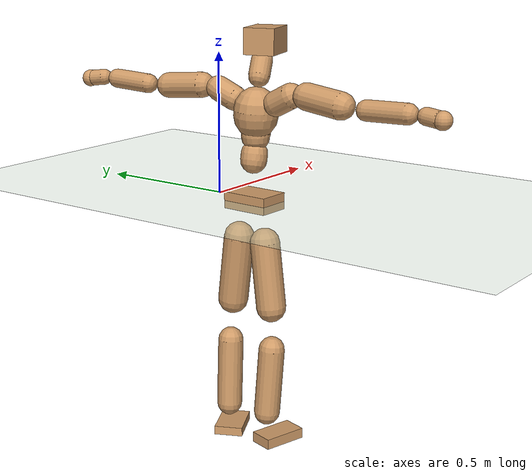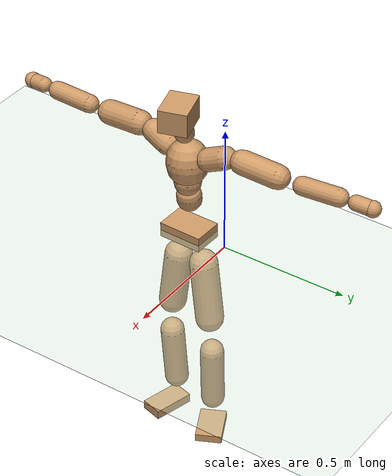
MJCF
<mujoco model="humanoid">
  <compiler coordinate="local" angle="radian"/>
  <default>
    <joint damping="0.0" armature="0.01" stiffness="0.0" limited="true"/>
    <geom conaffinity="1" condim="3" contype="7" margin="0.001" rgba="0.8 0.6 .4 1"/>
  </default>
  <asset>
    <texture type="skybox" builtin="gradient" rgb1=".4 .5 .6" rgb2="0 0 0" width="100" height="100"/>
    <texture builtin="flat" height="1278" mark="cross" markrgb="1 1 1" name="texgeom" random="0.01" rgb1="0.8 0.6 0.4" rgb2="0.8 0.6 0.4" type="cube" width="127"/>
    <texture builtin="checker" height="100" name="texplane" rgb1="0 0 0" rgb2="0.8 0.8 0.8" type="2d" width="100"/>
    <material name="MatPlane" reflectance="0.5" shininess="1" specular="1" texrepeat="60 60" texture="texplane"/>
    <material name="geom" texture="texgeom" texuniform="true"/>
  </asset>
  <worldbody>
    <light cutoff="100" diffuse="1 1 1" dir="-0 0 -1.3" directional="true" exponent="1" pos="0 0 1.3" specular=".1 .1 .1"/>
    <geom conaffinity="1" condim="3" name="floor" pos="0 0 0" rgba="0.8 0.9 0.8 1" size="100 100 .2" type="plane" material="MatPlane"/>
    <body name="Pelvis" pos="-0.003 -0.1662 0.0079">
      <freejoint name="Pelvis"/>
      <geom type="box" contype="1" conaffinity="1" density="500" pos="-0.0126 0.0004 -0.0079" size="0.0593 0.0864 0.0293" quat="0.9999 0.0000 0.0000 -0.0141" name="Pelvis"/>
      <body name="L_Hip" pos="-0.0286 0.0453 -0.0663">
        <joint name="L_Hip_x" type="hinge" pos="0 0 0" axis="1 0 0" stiffness="800" damping="80" armature="0.02" range="-180.0000 180.0000"/>
        <joint name="L_Hip_y" type="hinge" pos="0 0 0" axis="0 1 0" stiffness="800" damping="80" armature="0.02" range="-180.0000 180.0000"/>
        <joint name="L_Hip_z" type="hinge" pos="0 0 0" axis="0 0 1" stiffness="800" damping="80" armature="0.02" range="-180.0000 180.0000"/>
        <geom type="capsule" contype="1" conaffinity="1" density="500" fromto="0.0024 0.0111 -0.0797 0.0096 0.0443 -0.3187" size="0.0543" name="L_Hip"/>
        <body name="L_Knee" pos="0.012 0.0554 -0.3984">
          <joint name="L_Knee_x" type="hinge" pos="0 0 0" axis="1 0 0" stiffness="800" damping="80" armature="0.02" range="-180.0000 180.0000"/>
          <joint name="L_Knee_y" type="hinge" pos="0 0 0" axis="0 1 0" stiffness="800" damping="80" armature="0.02" range="-180.0000 180.0000"/>
          <joint name="L_Knee_z" type="hinge" pos="0 0 0" axis="0 0 1" stiffness="800" damping="80" armature="0.02" range="-180.0000 180.0000"/>
          <geom type="capsule" contype="1" conaffinity="1" density="500" fromto="-0.0052 -0.0016 -0.0809 -0.0210 -0.0066 -0.3236" size="0.0456" name="L_Knee"/>
          <body name="L_Ankle" pos="-0.0262 -0.0082 -0.4046">
            <joint name="L_Ankle_x" type="hinge" pos="0 0 0" axis="1 0 0" stiffness="800" damping="80" armature="0.02" range="-180.0000 180.0000"/>
            <joint name="L_Ankle_y" type="hinge" pos="0 0 0" axis="0 1 0" stiffness="800" damping="80" armature="0.02" range="-180.0000 180.0000"/>
            <joint name="L_Ankle_z" type="hinge" pos="0 0 0" axis="0 0 1" stiffness="800" damping="80" armature="0.02" range="-180.0000 180.0000"/>
            <geom type="box" contype="1" conaffinity="1" density="500" pos="0.0524 0.0255 -0.0281" size="0.0763 0.0515 0.0159" quat="0.9744 0.0000 0.0000 0.2247" name="L_Ankle"/>
            <body name="L_Toe" pos="0.1049 0.0511 -0.0563">
              <joint name="L_Toe_x" type="hinge" pos="0 0 0" axis="1 0 0" stiffness="500" damping="50" armature="0.02" range="-180.0000 180.0000"/>
              <joint name="L_Toe_y" type="hinge" pos="0 0 0" axis="0 1 0" stiffness="500" damping="50" armature="0.02" range="-180.0000 180.0000"/>
              <joint name="L_Toe_z" type="hinge" pos="0 0 0" axis="0 0 1" stiffness="500" damping="50" armature="0.02" range="-180.0000 180.0000"/>
              <geom type="box" contype="1" conaffinity="1" density="500" pos="0.0000 0.0000 0.0308" size="0.0009 0.0025 0.0009" quat="0.9736 0.0000 0.0000 0.2285" name="L_Toe"/>
            </body>
          </body>
        </body>
      </body>
      <body name="R_Hip" pos="-0.0275 -0.0471 -0.0722">
        <joint name="R_Hip_x" type="hinge" pos="0 0 0" axis="1 0 0" stiffness="800" damping="80" armature="0.02" range="-180.0000 180.0000"/>
        <joint name="R_Hip_y" type="hinge" pos="0 0 0" axis="0 1 0" stiffness="800" damping="80" armature="0.02" range="-180.0000 180.0000"/>
        <joint name="R_Hip_z" type="hinge" pos="0 0 0" axis="0 0 1" stiffness="800" damping="80" armature="0.02" range="-180.0000 180.0000"/>
        <geom type="capsule" contype="1" conaffinity="1" density="500" fromto="-0.0004 -0.0099 -0.0770 -0.0016 -0.0395 -0.3080" size="0.0527" name="R_Hip"/>
        <body name="R_Knee" pos="-0.002 -0.0494 -0.385">
          <joint name="R_Knee_x" type="hinge" pos="0 0 0" axis="1 0 0" stiffness="800" damping="80" armature="0.02" range="-180.0000 180.0000"/>
          <joint name="R_Knee_y" type="hinge" pos="0 0 0" axis="0 1 0" stiffness="800" damping="80" armature="0.02" range="-180.0000 180.0000"/>
          <joint name="R_Knee_z" type="hinge" pos="0 0 0" axis="0 0 1" stiffness="800" damping="80" armature="0.02" range="-180.0000 180.0000"/>
          <geom type="capsule" contype="1" conaffinity="1" density="500" fromto="-0.0049 0.0029 -0.0791 -0.0197 0.0116 -0.3163" size="0.0464" name="R_Knee"/>
          <body name="R_Ankle" pos="-0.0247 0.0146 -0.3953">
            <joint name="R_Ankle_x" type="hinge" pos="0 0 0" axis="1 0 0" stiffness="800" damping="80" armature="0.02" range="-180.0000 180.0000"/>
            <joint name="R_Ankle_y" type="hinge" pos="0 0 0" axis="0 1 0" stiffness="800" damping="80" armature="0.02" range="-180.0000 180.0000"/>
            <joint name="R_Ankle_z" type="hinge" pos="0 0 0" axis="0 0 1" stiffness="800" damping="80" armature="0.02" range="-180.0000 180.0000"/>
            <geom type="box" contype="1" conaffinity="1" density="500" pos="0.0564 -0.0152 -0.0296" size="0.0806 0.0436 0.0186" quat="0.9913 0.0000 0.0000 -0.1315" name="R_Ankle"/>
            <body name="R_Toe" pos="0.1127 -0.0304 -0.0592">
              <joint name="R_Toe_x" type="hinge" pos="0 0 0" axis="1 0 0" stiffness="500" damping="50" armature="0.02" range="-180.0000 180.0000"/>
              <joint name="R_Toe_y" type="hinge" pos="0 0 0" axis="0 1 0" stiffness="500" damping="50" armature="0.02" range="-180.0000 180.0000"/>
              <joint name="R_Toe_z" type="hinge" pos="0 0 0" axis="0 0 1" stiffness="500" damping="50" armature="0.02" range="-180.0000 180.0000"/>
              <geom type="box" contype="1" conaffinity="1" density="500" pos="0.0000 0.0000 0.0326" size="0.0008 0.0021 0.0011" quat="0.9926 0.0000 0.0000 -0.1212" name="R_Toe"/>
            </body>
          </body>
        </body>
      </body>
      <body name="Torso" pos="-0.0197 0.0039 0.0908">
        <joint name="Torso_x" type="hinge" pos="0 0 0" axis="1 0 0" stiffness="1000" damping="100" armature="0.02" range="-180.0000 180.0000"/>
        <joint name="Torso_y" type="hinge" pos="0 0 0" axis="0 1 0" stiffness="1000" damping="100" armature="0.02" range="-180.0000 180.0000"/>
        <joint name="Torso_z" type="hinge" pos="0 0 0" axis="0 0 1" stiffness="1000" damping="100" armature="0.02" range="-180.0000 180.0000"/>
        <geom type="capsule" contype="1" conaffinity="1" density="500" fromto="0.0132 0.0009 0.0652 0.0088 0.0006 0.0435" size="0.0469" name="Torso"/>
        <body name="Spine" pos="0.0219 0.0014 0.1087">
          <joint name="Spine_x" type="hinge" pos="0 0 0" axis="1 0 0" stiffness="1000" damping="100" armature="0.02" range="-180.0000 180.0000"/>
          <joint name="Spine_y" type="hinge" pos="0 0 0" axis="0 1 0" stiffness="1000" damping="100" armature="0.02" range="-180.0000 180.0000"/>
          <joint name="Spine_z" type="hinge" pos="0 0 0" axis="0 0 1" stiffness="1000" damping="100" armature="0.02" range="-180.0000 180.0000"/>
          <geom type="capsule" contype="1" conaffinity="1" density="500" fromto="-0.0010 -0.0000 0.0255 -0.0007 -0.0000 0.0170" size="0.0508" name="Spine"/>
          <body name="Chest" pos="-0.0017 0 0.0426">
            <joint name="Chest_x" type="hinge" pos="0 0 0" axis="1 0 0" stiffness="1000" damping="100" armature="0.02" range="-180.0000 180.0000"/>
            <joint name="Chest_y" type="hinge" pos="0 0 0" axis="0 1 0" stiffness="1000" damping="100" armature="0.02" range="-180.0000 180.0000"/>
            <joint name="Chest_z" type="hinge" pos="0 0 0" axis="0 0 1" stiffness="1000" damping="100" armature="0.02" range="-180.0000 180.0000"/>
            <geom type="capsule" contype="1" conaffinity="1" density="500" fromto="-0.0038 -0.0049 0.0680 -0.0025 -0.0033 0.0453" size="0.0777" name="Chest"/>
            <body name="Neck" pos="-0.0043 -0.0135 0.1637">
              <joint name="Neck_x" type="hinge" pos="0 0 0" axis="1 0 0" stiffness="500" damping="50" armature="0.02" range="-180.0000 180.0000"/>
              <joint name="Neck_y" type="hinge" pos="0 0 0" axis="0 1 0" stiffness="500" damping="50" armature="0.02" range="-180.0000 180.0000"/>
              <joint name="Neck_z" type="hinge" pos="0 0 0" axis="0 0 1" stiffness="500" damping="50" armature="0.02" range="-180.0000 180.0000"/>
              <geom type="capsule" contype="1" conaffinity="1" density="500" fromto="0.0087 0.0023 0.0177 0.0349 0.0091 0.0708" size="0.0371" name="Neck"/>
              <body name="Head" pos="0.0436 0.0114 0.0885">
                <joint name="Head_x" type="hinge" pos="0 0 0" axis="1 0 0" stiffness="500" damping="50" armature="0.02" range="-180.0000 180.0000"/>
                <joint name="Head_y" type="hinge" pos="0 0 0" axis="0 1 0" stiffness="500" damping="50" armature="0.02" range="-180.0000 180.0000"/>
                <joint name="Head_z" type="hinge" pos="0 0 0" axis="0 0 1" stiffness="500" damping="50" armature="0.02" range="-180.0000 180.0000"/>
                <geom type="box" contype="1" conaffinity="1" density="500" pos="0.0228 0.0067 0.0452" size="0.0695 0.0546 0.0455" quat="0.9898 0.0000 0.0000 0.1425" name="Head"/>
              </body>
            </body>
            <body name="L_Thorax" pos="-0.0039 0.0636 0.0888">
              <joint name="L_Thorax_x" type="hinge" pos="0 0 0" axis="1 0 0" stiffness="500" damping="50" armature="0.02" range="-180.0000 180.0000"/>
              <joint name="L_Thorax_y" type="hinge" pos="0 0 0" axis="0 1 0" stiffness="500" damping="50" armature="0.02" range="-180.0000 180.0000"/>
              <joint name="L_Thorax_z" type="hinge" pos="0 0 0" axis="0 0 1" stiffness="500" damping="50" armature="0.02" range="-180.0000 180.0000"/>
              <geom type="capsule" contype="1" conaffinity="1" density="500" fromto="-0.0020 0.0218 0.0099 -0.0078 0.0873 0.0395" size="0.0436" name="L_Thorax"/>
              <body name="L_Shoulder" pos="-0.0098 0.1091 0.0493">
                <joint name="L_Shoulder_x" type="hinge" pos="0 0 0" axis="1 0 0" stiffness="500" damping="50" armature="0.02" range="-720.0000 720.0000"/>
                <joint name="L_Shoulder_y" type="hinge" pos="0 0 0" axis="0 1 0" stiffness="500" damping="50" armature="0.02" range="-720.0000 720.0000"/>
                <joint name="L_Shoulder_z" type="hinge" pos="0 0 0" axis="0 0 1" stiffness="500" damping="50" armature="0.02" range="-720.0000 720.0000"/>
                <geom type="capsule" contype="1" conaffinity="1" density="500" fromto="-0.0034 0.0473 -0.0040 -0.0136 0.1891 -0.0162" size="0.0451" name="L_Shoulder"/>
                <body name="L_Elbow" pos="-0.017 0.2364 -0.0202">
                  <joint name="L_Elbow_x" type="hinge" pos="0 0 0" axis="1 0 0" stiffness="500" damping="50" armature="0.02" range="-720.0000 720.0000"/>
                  <joint name="L_Elbow_y" type="hinge" pos="0 0 0" axis="0 1 0" stiffness="500" damping="50" armature="0.02" range="-720.0000 720.0000"/>
                  <joint name="L_Elbow_z" type="hinge" pos="0 0 0" axis="0 0 1" stiffness="500" damping="50" armature="0.02" range="-720.0000 720.0000"/>
                  <geom type="capsule" contype="1" conaffinity="1" density="500" fromto="-0.0018 0.0485 0.0022 -0.0070 0.1942 0.0090" size="0.0344" name="L_Elbow"/>
                  <body name="L_Wrist" pos="-0.0088 0.2427 0.0112">
                    <joint name="L_Wrist_x" type="hinge" pos="0 0 0" axis="1 0 0" stiffness="300" damping="30" armature="0.02" range="-180.0000 180.0000"/>
                    <joint name="L_Wrist_y" type="hinge" pos="0 0 0" axis="0 1 0" stiffness="300" damping="30" armature="0.02" range="-180.0000 180.0000"/>
                    <joint name="L_Wrist_z" type="hinge" pos="0 0 0" axis="0 0 1" stiffness="300" damping="30" armature="0.02" range="-180.0000 180.0000"/>
                    <geom type="capsule" contype="1" conaffinity="1" density="500" fromto="-0.0028 0.0150 -0.0019 -0.0111 0.0601 -0.0077" size="0.0285" name="L_Wrist"/>
                    <body name="L_Hand" pos="-0.0139 0.0751 -0.0097">
                      <joint name="L_Hand_x" type="hinge" pos="0 0 0" axis="1 0 0" stiffness="300" damping="30" armature="0.02" range="-180.0000 180.0000"/>
                      <joint name="L_Hand_y" type="hinge" pos="0 0 0" axis="0 1 0" stiffness="300" damping="30" armature="0.02" range="-180.0000 180.0000"/>
                      <joint name="L_Hand_z" type="hinge" pos="0 0 0" axis="0 0 1" stiffness="300" damping="30" armature="0.02" range="-180.0000 180.0000"/>
                      <geom type="sphere" contype="1" conaffinity="1" density="500" size="0.0306" pos="0.0000 0.0000 0.0000" name="L_Hand"/>
                    </body>
                  </body>
                </body>
              </body>
            </body>
            <body name="R_Thorax" pos="-0.011 -0.0746 0.0875">
              <joint name="R_Thorax_x" type="hinge" pos="0 0 0" axis="1 0 0" stiffness="500" damping="50" armature="0.02" range="-180.0000 180.0000"/>
              <joint name="R_Thorax_y" type="hinge" pos="0 0 0" axis="0 1 0" stiffness="500" damping="50" armature="0.02" range="-180.0000 180.0000"/>
              <joint name="R_Thorax_z" type="hinge" pos="0 0 0" axis="0 0 1" stiffness="500" damping="50" armature="0.02" range="-180.0000 180.0000"/>
              <geom type="capsule" contype="1" conaffinity="1" density="500" fromto="-0.0006 -0.0200 0.0103 -0.0025 -0.0799 0.0413" size="0.0442" name="R_Thorax"/>
              <body name="R_Shoulder" pos="-0.0032 -0.0998 0.0517">
                <joint name="R_Shoulder_x" type="hinge" pos="0 0 0" axis="1 0 0" stiffness="500" damping="50" armature="0.02" range="-720.0000 720.0000"/>
                <joint name="R_Shoulder_y" type="hinge" pos="0 0 0" axis="0 1 0" stiffness="500" damping="50" armature="0.02" range="-720.0000 720.0000"/>
                <joint name="R_Shoulder_z" type="hinge" pos="0 0 0" axis="0 0 1" stiffness="500" damping="50" armature="0.02" range="-720.0000 720.0000"/>
                <geom type="capsule" contype="1" conaffinity="1" density="500" fromto="-0.0045 -0.0476 -0.0050 -0.0179 -0.1906 -0.0202" size="0.0463" name="R_Shoulder"/>
                <body name="R_Elbow" pos="-0.0223 -0.2382 -0.0252">
                  <joint name="R_Elbow_x" type="hinge" pos="0 0 0" axis="1 0 0" stiffness="500" damping="50" armature="0.02" range="-720.0000 720.0000"/>
                  <joint name="R_Elbow_y" type="hinge" pos="0 0 0" axis="0 1 0" stiffness="500" damping="50" armature="0.02" range="-720.0000 720.0000"/>
                  <joint name="R_Elbow_z" type="hinge" pos="0 0 0" axis="0 0 1" stiffness="500" damping="50" armature="0.02" range="-720.0000 720.0000"/>
                  <geom type="capsule" contype="1" conaffinity="1" density="500" fromto="-0.0007 -0.0497 0.0015 -0.0028 -0.1989 0.0059" size="0.0346" name="R_Elbow"/>
                  <body name="R_Wrist" pos="-0.0035 -0.2487 0.0074">
                    <joint name="R_Wrist_x" type="hinge" pos="0 0 0" axis="1 0 0" stiffness="300" damping="30" armature="0.02" range="-180.0000 180.0000"/>
                    <joint name="R_Wrist_y" type="hinge" pos="0 0 0" axis="0 1 0" stiffness="300" damping="30" armature="0.02" range="-180.0000 180.0000"/>
                    <joint name="R_Wrist_z" type="hinge" pos="0 0 0" axis="0 0 1" stiffness="300" damping="30" armature="0.02" range="-180.0000 180.0000"/>
                    <geom type="capsule" contype="1" conaffinity="1" density="500" fromto="-0.0019 -0.0151 -0.0015 -0.0077 -0.0603 -0.0059" size="0.0285" name="R_Wrist"/>
                    <body name="R_Hand" pos="-0.0096 -0.0754 -0.0073">
                      <joint name="R_Hand_x" type="hinge" pos="0 0 0" axis="1 0 0" stiffness="300" damping="30" armature="0.02" range="-180.0000 180.0000"/>
                      <joint name="R_Hand_y" type="hinge" pos="0 0 0" axis="0 1 0" stiffness="300" damping="30" armature="0.02" range="-180.0000 180.0000"/>
                      <joint name="R_Hand_z" type="hinge" pos="0 0 0" axis="0 0 1" stiffness="300" damping="30" armature="0.02" range="-180.0000 180.0000"/>
                      <geom type="sphere" contype="1" conaffinity="1" density="500" size="0.0304" pos="0.0000 0.0000 0.0000" name="R_Hand"/>
                    </body>
                  </body>
                </body>
              </body>
            </body>
          </body>
        </body>
      </body>
    </body>
  </worldbody>
  <actuator>
    <motor name="L_Hip_x" joint="L_Hip_x" gear="500"/>
    <motor name="L_Hip_y" joint="L_Hip_y" gear="500"/>
    <motor name="L_Hip_z" joint="L_Hip_z" gear="500"/>
    <motor name="L_Knee_x" joint="L_Knee_x" gear="500"/>
    <motor name="L_Knee_y" joint="L_Knee_y" gear="500"/>
    <motor name="L_Knee_z" joint="L_Knee_z" gear="500"/>
    <motor name="L_Ankle_x" joint="L_Ankle_x" gear="500"/>
    <motor name="L_Ankle_y" joint="L_Ankle_y" gear="500"/>
    <motor name="L_Ankle_z" joint="L_Ankle_z" gear="500"/>
    <motor name="L_Toe_x" joint="L_Toe_x" gear="500"/>
    <motor name="L_Toe_y" joint="L_Toe_y" gear="500"/>
    <motor name="L_Toe_z" joint="L_Toe_z" gear="500"/>
    <motor name="R_Hip_x" joint="R_Hip_x" gear="500"/>
    <motor name="R_Hip_y" joint="R_Hip_y" gear="500"/>
    <motor name="R_Hip_z" joint="R_Hip_z" gear="500"/>
    <motor name="R_Knee_x" joint="R_Knee_x" gear="500"/>
    <motor name="R_Knee_y" joint="R_Knee_y" gear="500"/>
    <motor name="R_Knee_z" joint="R_Knee_z" gear="500"/>
    <motor name="R_Ankle_x" joint="R_Ankle_x" gear="500"/>
    <motor name="R_Ankle_y" joint="R_Ankle_y" gear="500"/>
    <motor name="R_Ankle_z" joint="R_Ankle_z" gear="500"/>
    <motor name="R_Toe_x" joint="R_Toe_x" gear="500"/>
    <motor name="R_Toe_y" joint="R_Toe_y" gear="500"/>
    <motor name="R_Toe_z" joint="R_Toe_z" gear="500"/>
    <motor name="Torso_x" joint="Torso_x" gear="500"/>
    <motor name="Torso_y" joint="Torso_y" gear="500"/>
    <motor name="Torso_z" joint="Torso_z" gear="500"/>
    <motor name="Spine_x" joint="Spine_x" gear="500"/>
    <motor name="Spine_y" joint="Spine_y" gear="500"/>
    <motor name="Spine_z" joint="Spine_z" gear="500"/>
    <motor name="Chest_x" joint="Chest_x" gear="500"/>
    <motor name="Chest_y" joint="Chest_y" gear="500"/>
    <motor name="Chest_z" joint="Chest_z" gear="500"/>
    <motor name="Neck_x" joint="Neck_x" gear="500"/>
    <motor name="Neck_y" joint="Neck_y" gear="500"/>
    <motor name="Neck_z" joint="Neck_z" gear="500"/>
    <motor name="Head_x" joint="Head_x" gear="500"/>
    <motor name="Head_y" joint="Head_y" gear="500"/>
    <motor name="Head_z" joint="Head_z" gear="500"/>
    <motor name="L_Thorax_x" joint="L_Thorax_x" gear="500"/>
    <motor name="L_Thorax_y" joint="L_Thorax_y" gear="500"/>
    <motor name="L_Thorax_z" joint="L_Thorax_z" gear="500"/>
    <motor name="L_Shoulder_x" joint="L_Shoulder_x" gear="500"/>
    <motor name="L_Shoulder_y" joint="L_Shoulder_y" gear="500"/>
    <motor name="L_Shoulder_z" joint="L_Shoulder_z" gear="500"/>
    <motor name="L_Elbow_x" joint="L_Elbow_x" gear="500"/>
    <motor name="L_Elbow_y" joint="L_Elbow_y" gear="500"/>
    <motor name="L_Elbow_z" joint="L_Elbow_z" gear="500"/>
    <motor name="L_Wrist_x" joint="L_Wrist_x" gear="500"/>
    <motor name="L_Wrist_y" joint="L_Wrist_y" gear="500"/>
    <motor name="L_Wrist_z" joint="L_Wrist_z" gear="500"/>
    <motor name="L_Hand_x" joint="L_Hand_x" gear="500"/>
    <motor name="L_Hand_y" joint="L_Hand_y" gear="500"/>
    <motor name="L_Hand_z" joint="L_Hand_z" gear="500"/>
    <motor name="R_Thorax_x" joint="R_Thorax_x" gear="500"/>
    <motor name="R_Thorax_y" joint="R_Thorax_y" gear="500"/>
    <motor name="R_Thorax_z" joint="R_Thorax_z" gear="500"/>
    <motor name="R_Shoulder_x" joint="R_Shoulder_x" gear="500"/>
    <motor name="R_Shoulder_y" joint="R_Shoulder_y" gear="500"/>
    <motor name="R_Shoulder_z" joint="R_Shoulder_z" gear="500"/>
    <motor name="R_Elbow_x" joint="R_Elbow_x" gear="500"/>
    <motor name="R_Elbow_y" joint="R_Elbow_y" gear="500"/>
    <motor name="R_Elbow_z" joint="R_Elbow_z" gear="500"/>
    <motor name="R_Wrist_x" joint="R_Wrist_x" gear="500"/>
    <motor name="R_Wrist_y" joint="R_Wrist_y" gear="500"/>
    <motor name="R_Wrist_z" joint="R_Wrist_z" gear="500"/>
    <motor name="R_Hand_x" joint="R_Hand_x" gear="500"/>
    <motor name="R_Hand_y" joint="R_Hand_y" gear="500"/>
    <motor name="R_Hand_z" joint="R_Hand_z" gear="500"/>
  </actuator>
  <contact>
    <exclude body1="Torso" body2="Chest"/>
    <exclude body1="Head" body2="Chest"/>
    <exclude body1="R_Knee" body2="R_Toe"/>
    <exclude body1="R_Knee" body2="L_Ankle"/>
    <exclude body1="R_Knee" body2="L_Toe"/>
    <exclude body1="L_Knee" body2="L_Toe"/>
    <exclude body1="L_Knee" body2="R_Ankle"/>
    <exclude body1="L_Knee" body2="R_Toe"/>
    <exclude body1="L_Shoulder" body2="Chest"/>
    <exclude body1="R_Shoulder" body2="Chest"/>
  </contact>
  <sensor/>
  <size njmax="700" nconmax="700"/>
</mujoco>
